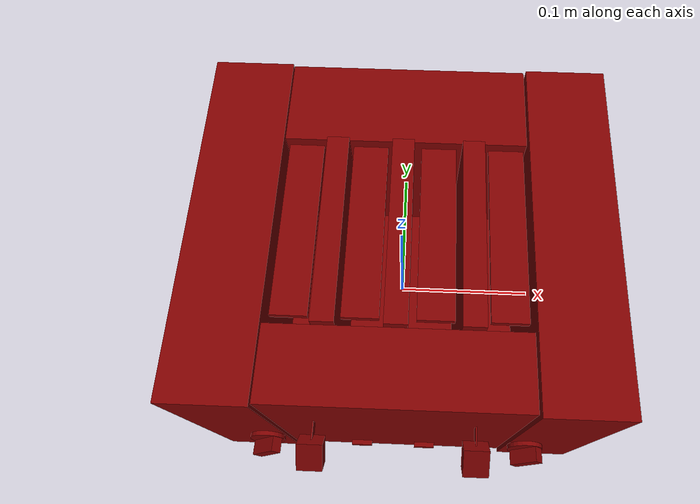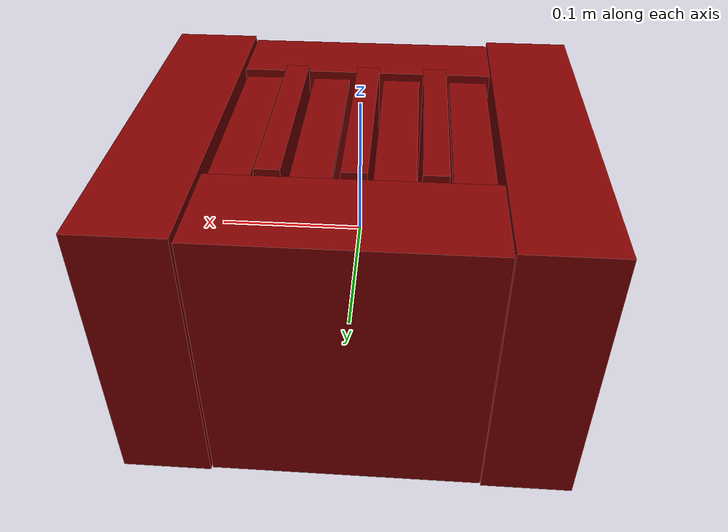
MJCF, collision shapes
<?xml version='1.0' encoding='UTF-8'?>
<mujoco model="model">
  <option timestep="0.002" gravity="0.0 0.0 -9.81"/>
  <compiler angle="radian"/>
  <asset>
    <mesh file="visuals/Body001.obj" name="Body001_vis"/>
    <mesh file="visuals/Body002.obj" name="Body002_vis"/>
    <mesh file="visuals/Button001.obj" name="Button001_vis"/>
    <mesh file="visuals/Button002.obj" name="Button002_vis"/>
    <mesh file="visuals/Knob001.obj" name="Knob001_vis"/>
    <mesh file="visuals/Knob002.obj" name="Knob002_vis"/>
    <mesh file="visuals/Lever001.obj" name="Lever001_vis"/>
    <mesh file="visuals/Lever002.obj" name="Lever002_vis"/>
    <texture file="visuals/T_BC001.png" name="Body001_material" type="2d"/>
    <material name="Body001_material" rgba="1 1 1 1.0" texture="Body001_material" shininess="0.1" specular="1"/>
    <texture file="visuals/T_BC001.png" name="Body002_material" type="2d"/>
    <material name="Body002_material" rgba="1 1 1 1.0" texture="Body002_material" shininess="0.1" specular="1"/>
    <texture file="visuals/T_BC001.png" name="Button001_material" type="2d"/>
    <material name="Button001_material" rgba="1 1 1 1.0" texture="Button001_material" shininess="0.1" specular="1"/>
    <texture file="visuals/T_BC001.png" name="Button002_material" type="2d"/>
    <material name="Button002_material" rgba="1 1 1 1.0" texture="Button002_material" shininess="0.1" specular="1"/>
    <texture file="visuals/T_BC001.png" name="Knob001_material" type="2d"/>
    <material name="Knob001_material" rgba="1 1 1 1.0" texture="Knob001_material" shininess="0.1" specular="1"/>
    <texture file="visuals/T_BC001.png" name="Knob002_material" type="2d"/>
    <material name="Knob002_material" rgba="1 1 1 1.0" texture="Knob002_material" shininess="0.1" specular="1"/>
    <texture file="visuals/T_BC001.png" name="Lever001_material" type="2d"/>
    <material name="Lever001_material" rgba="1 1 1 1.0" texture="Lever001_material" shininess="0.1" specular="1"/>
    <texture file="visuals/T_BC001.png" name="Lever002_material" type="2d"/>
    <material name="Lever002_material" rgba="1 1 1 1.0" texture="Lever002_material" shininess="0.1" specular="1"/>
  </asset>
  <default>
    <default class="visual">
      <geom conaffinity="0" contype="0" group="1" type="mesh"/>
    </default>
    <default class="collision">
      <geom group="0" rgba="0.5 0 0 0.5"/>
    </default>
    <default class="spawn">
      <geom group="0" rgba="1 1 1 0.5" contype="0" conaffinity="0"/>
      <site group="0" rgba="1 1 1 0.5"/>
    </default>
    <default class="region">
      <geom group="1" conaffinity="0" contype="0" rgba="0 1 0 0"/>
    </default>
  </default>
  <worldbody>
    <body>
      <body name="object">
        <geom mesh="Body001_vis" type="mesh" solimp="0.998 0.998 0.001" solref="0.001 1" friction="0.95 0.3 0.1" class="visual" material="Body001_material"/>
        <geom class="collision" type="box" pos="-0.117446 0.014701 -0.000683" size="0.0292451661080122 0.1295139193534851 0.09570308774709702" quat="1.0 0.0 0.0 0.0" density="1000.0"/>
        <geom class="collision" type="box" pos="0.117743 0.014701 -0.000683" size="0.0292451661080122 0.1295139193534851 0.09570308774709702" quat="1.0 0.0 0.0 0.0" density="1000.0"/>
        <geom class="collision" type="box" pos="-0.000318 0.111359 -0.000683" size="0.08727206289768219 0.03285679966211319 0.09343433380126953" quat="1.0 0.0 0.0 0.0" density="1000.0"/>
        <geom class="collision" type="box" pos="-0.000318 -0.086911 0.002464" size="0.08727206289768219 0.025720946490764618 0.09028677642345428" quat="1.0 0.0 0.0 0.0" density="1000.0"/>
        <geom class="collision" type="box" pos="-0.000241 0.005792 -0.048980" size="0.08895101398229599 0.06605091691017151 0.039889391511678696" quat="1.0 0.0 0.0 0.0" density="1000.0"/>
        <body name="Body002">
          <geom mesh="Body002_vis" type="mesh" solimp="0.998 0.998 0.001" solref="0.001 1" friction="0.95 0.3 0.1" class="visual" material="Body002_material"/>
          <geom class="collision" type="box" pos="-0.048676 0.008974 0.042638" size="0.00784926675260067 0.06927337497472763 0.054537829011678696" quat="1.0 0.0 0.0 0.0" density="1000.0"/>
          <geom class="collision" type="box" pos="-0.001770 0.008974 0.042638" size="0.00784926675260067 0.06927337497472763 0.054537829011678696" quat="1.0 0.0 0.0 0.0" density="1000.0"/>
          <geom class="collision" type="box" pos="0.048607 0.008974 0.042638" size="0.00784926675260067 0.06927337497472763 0.054537829011678696" quat="1.0 0.0 0.0 0.0" density="1000.0"/>
        </body>
        <body name="Button001">
          <joint axis="0.0 1.0 0.0" pos="-0.026631 -0.119295 -0.027251" limited="true" name="Button001_joint" range="0.0 0.0015" type="slide" damping="1" frictionloss="1" armature=".01" stiffness="0.05"/>
          <geom mesh="Button001_vis" type="mesh" solimp="0.998 0.998 0.001" solref="0.001 1" friction="0.95 0.3 0.1" class="visual" material="Button001_material"/>
          <geom class="collision" type="box" pos="-0.026631 -0.119295 -0.027251" size="0.007671647239476442 0.0017126075690612197 0.003935616929084063" quat="1.0 0.0 0.0 0.0" density="1000.0"/>
        </body>
        <body name="Button002">
          <joint axis="0.0 1.0 0.0" pos="0.021654 -0.119295 -0.027251" limited="true" name="Button002_joint" range="0.0 0.0015" type="slide" damping="1" frictionloss="1" armature=".01" stiffness="0.05"/>
          <geom mesh="Button002_vis" type="mesh" solimp="0.998 0.998 0.001" solref="0.001 1" friction="0.95 0.3 0.1" class="visual" material="Button002_material"/>
          <geom class="collision" type="box" pos="0.021540 -0.119295 -0.027251" size="0.007671647239476442 0.0017126075690612197 0.003935616929084063" quat="1.0 0.0 0.0 0.0" density="1000.0"/>
        </body>
        <body name="Knob001">
          <joint axis="0.0 0.9942089915275574 -0.10746294260025024" pos="-0.097387 -0.123597 -0.011580" limited="true" name="Knob001_joint" range="0.0 4.537856055185257" type="hinge" damping="0.05" armature="0.001" springref="-0.01"/>
          <geom mesh="Knob001_vis" type="mesh" solimp="0.998 0.998 0.001" solref="0.001 1" friction="0.95 0.3 0.1" class="visual" material="Knob001_material"/>
          <geom class="collision" type="cylinder" pos="-0.097406 -0.119627 -0.011995" size="0.013089415617287159 0.0015820475528016686" quat="0.7476466298103333 0.6640967726707458 0.0 0.0" density="1000.0"/>
          <geom class="collision" type="box" pos="-0.096912 -0.126476 -0.010857" size="0.004070065449923277 0.005558236036449671 0.011412317864596844" quat="0.9140874743461609 -0.05409756302833557 0.40119051933288574 -0.023743243888020515" density="1000.0"/>
        </body>
        <body name="Knob002">
          <joint axis="0.0 0.9942089915275574 -0.10746294260025024" pos="0.097258 -0.124638 -0.011947" limited="true" name="Knob002_joint" range="0.0 4.537856055185257" type="hinge" damping="0.05" armature="0.001" springref="-0.01"/>
          <geom mesh="Knob002_vis" type="mesh" solimp="0.998 0.998 0.001" solref="0.001 1" friction="0.95 0.3 0.1" class="visual" material="Knob002_material"/>
          <geom class="collision" type="cylinder" pos="0.097270 -0.119627 -0.012516" size="0.013089415617287159 0.0015820475528016686" quat="0.7476466298103333 0.6640967726707458 0.0 0.0" density="1000.0"/>
          <geom class="collision" type="box" pos="0.097764 -0.126476 -0.011378" size="0.004070065449923277 0.005558236036449671 0.011412317864596844" quat="0.9140874743461609 -0.05409756302833557 0.40119051933288574 -0.023743243888020515" density="1000.0"/>
        </body>
        <body name="Lever001">
          <joint axis="0.0 0.0 -1.0" pos="-0.055926 -0.120044 0.038744" limited="true" name="Lever001_joint" range="0.0 0.07" type="slide" damping="1" frictionloss="1" armature=".01" stiffness="1" springref="-1"/>
          <geom mesh="Lever001_vis" type="mesh" solimp="0.998 0.998 0.001" solref="0.001 1" friction="0.95 0.3 0.1" class="visual" material="Lever001_material"/>
          <geom class="collision" type="box" pos="-0.056424 -0.134299 0.037501" size="0.008749963715672493 0.009631842374801636 0.006989365443587303" quat="0.9567050337791443 0.2910592555999756 0.0 0.0" name="sideL_lever_knob" density="1000.0"/>
          <geom class="collision" type="box" pos="-0.056246 -0.120527 0.038421" size="0.0004481362411752343 0.0067475950345396996 0.0047934409230947495" quat="1.0 0.0 0.0 0.0" density="1000.0"/>
          <geom class="collision" type="box" pos="-0.025239 0.010141 0.087991" size="0.01249999925494194 0.06499999761581421 0.0021728058345615864" quat="1.0 0.0 0.0 0.0" name="sideL_slotR_floor" density="1000.0"/>
          <geom class="collision" type="box" pos="-0.071593 0.010141 0.087991" size="0.01249999925494194 0.06499999761581421 0.0021728063002228737" quat="1.0 0.0 0.0 0.0" name="sideL_slotL_floor" density="1000.0"/>
        </body>
        <body name="Lever002">
          <joint axis="0.0 0.0 -1.0" pos="0.054411 -0.120622 0.038744" limited="true" name="Lever002_joint" range="0.0 0.07" type="slide" damping="1" frictionloss="1" armature=".01" stiffness="1" springref="-1"/>
          <geom mesh="Lever002_vis" type="mesh" solimp="0.998 0.998 0.001" solref="0.001 1" friction="0.95 0.3 0.1" class="visual" material="Lever002_material"/>
          <geom class="collision" type="box" pos="0.054661 -0.120527 0.038421" size="0.0004481362411752343 0.0067475950345396996 0.0047934409230947495" quat="1.0 0.0 0.0 0.0" density="1000.0"/>
          <geom class="collision" type="box" pos="0.054483 -0.134299 0.037501" size="0.008749963715672493 0.009631842374801636 0.006989365443587303" quat="0.9567050337791443 0.2910592555999756 0.0 0.0" name="sideR_lever_knob" density="1000.0"/>
          <geom class="collision" type="box" pos="0.072041 0.010141 0.087991" size="0.01249999925494194 0.06499999761581421 0.002172804670408368" quat="1.0 0.0 0.0 0.0" name="sideR_slotR_floor" density="1000.0"/>
          <geom class="collision" type="box" pos="0.023960 0.010141 0.087991" size="0.01249999925494194 0.06499999761581421 0.002172805368900299" quat="1.0 0.0 0.0 0.0" name="sideR_slotL_floor" density="1000.0"/>
        </body>
        <geom class="region" name="reg_main" type="box" pos="0.0 0.012107999999999994 7.250000000000312e-05" size="0.147464 0.133477 0.0974375"/>
      </body>
    </body>
  </worldbody>
  <actuator>
    <motor name="Button001_joint_actuator" joint="Button001_joint" gear="0.5"/>
    <motor name="Button002_joint_actuator" joint="Button002_joint" gear="0.5"/>
    <motor name="Knob001_joint_actuator" joint="Knob001_joint" gear="0.5"/>
    <motor name="Knob002_joint_actuator" joint="Knob002_joint" gear="0.5"/>
    <motor name="Lever001_joint_actuator" joint="Lever001_joint" gear="0.5"/>
    <motor name="Lever002_joint_actuator" joint="Lever002_joint" gear="0.5"/>
  </actuator>
</mujoco>
